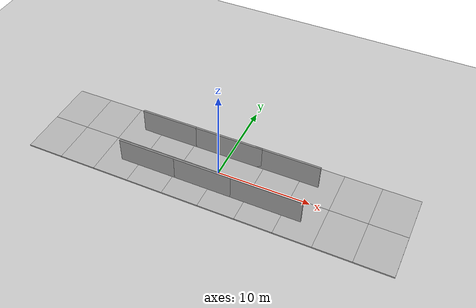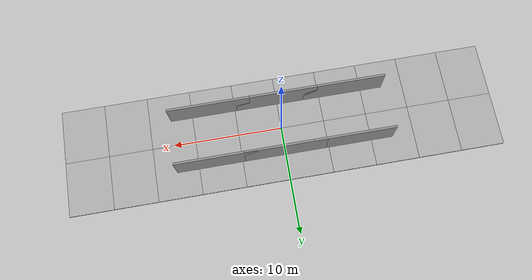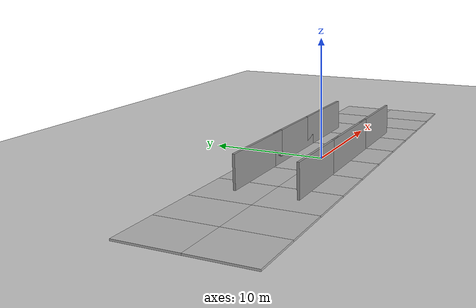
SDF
<sdf version="1.6">
 <world name="default">
  <light name="sun" type="directional">
   <pose>0 0 10 0 -0 0</pose>
   <diffuse>0.8 0.8 0.8 1</diffuse>
   <specular>0.1 0.1 0.1 1</specular>
   <attenuation>
    <range>1000</range>
    <constant>0.9</constant>
    <linear>0.01</linear>
    <quadratic>0.001</quadratic>
   </attenuation>
   <direction>-0.5 0.5 -1</direction>
  </light>
  <model name="ground_plane">
   <static>1</static>
   <link name="link">
    <collision name="collision">
     <geometry><plane><normal>0 0 1</normal><size>100 100</size></plane></geometry>
     <surface><friction><ode><mu>100</mu><mu2>50</mu2></ode></friction></surface>
    </collision>
    <visual name="visual">
     <cast_shadows>0</cast_shadows>
     <geometry><plane><normal>0 0 1</normal><size>100 100</size></plane></geometry>
     <material>
      <script><uri>file://media/materials/scripts/gazebo.material</uri><name>Gazebo/Grey</name></script>
     </material>
    </visual>
   </link>
  </model>
  <gravity>0 0 -9.8</gravity>
  <magnetic_field>6e-06 2.3e-05 -4.2e-05</magnetic_field>
  <atmosphere type="adiabatic"/>
  <physics name="default_physics" default="0" type="ode">
   <max_step_size>0.001</max_step_size>
   <real_time_factor>1</real_time_factor>
   <real_time_update_rate>1000</real_time_update_rate>
  </physics>
  <scene><ambient>0.4 0.4 0.4 1</ambient><background>0.7 0.7 0.7 1</background><shadows>1</shadows></scene>
  <spherical_coordinates>
   <surface_model>EARTH_WGS84</surface_model>
   <latitude_deg>0</latitude_deg>
   <longitude_deg>0</longitude_deg>
   <elevation>0</elevation>
   <heading_deg>0</heading_deg>
  </spherical_coordinates>
  <model name="grey_wall">
   <static>1</static>
   <link name="link">
    <pose>0 0 1.4 0 -0 0</pose>
    <collision name="collision"><geometry><box><size>7.5 0.2 2.8</size></box></geometry></collision>
    <visual name="visual">
     <cast_shadows>0</cast_shadows>
     <geometry><box><size>7.5 0.2 2.8</size></box></geometry>
     <material>
      <script>
       <uri>model://grey_wall/materials/scripts</uri>
       <uri>model://grey_wall/materials/textures</uri>
       <name>vrc/grey_wall</name>
      </script>
     </material>
    </visual>
   </link>
   <pose>-6.25 2.5 0 0 -0 0</pose>
  </model>
  <model name="grey_wall_clone">
   <static>1</static>
   <link name="link">
    <pose>0 0 1.4 0 -0 0</pose>
    <collision name="collision"><geometry><box><size>7.5 0.2 2.8</size></box></geometry></collision>
    <visual name="visual">
     <cast_shadows>0</cast_shadows>
     <geometry><box><size>7.5 0.2 2.8</size></box></geometry>
     <material>
      <script>
       <uri>model://grey_wall/materials/scripts</uri>
       <uri>model://grey_wall/materials/textures</uri>
       <name>vrc/grey_wall</name>
      </script>
     </material>
    </visual>
   </link>
   <pose>0 2.5 0 0 -0 0</pose>
  </model>
  <model name="grey_wall_clone_0">
   <static>1</static>
   <link name="link">
    <pose>0 0 1.4 0 -0 0</pose>
    <collision name="collision"><geometry><box><size>7.5 0.2 2.8</size></box></geometry></collision>
    <visual name="visual">
     <cast_shadows>0</cast_shadows>
     <geometry><box><size>7.5 0.2 2.8</size></box></geometry>
     <material>
      <script>
       <uri>model://grey_wall/materials/scripts</uri>
       <uri>model://grey_wall/materials/textures</uri>
       <name>vrc/grey_wall</name>
      </script>
     </material>
    </visual>
   </link>
   <pose>-6.25 -2.5 0 0 -0 0</pose>
  </model>
  <model name="grey_wall_clone_1">
   <static>1</static>
   <link name="link">
    <pose>0 0 1.4 0 -0 0</pose>
    <collision name="collision"><geometry><box><size>7.5 0.2 2.8</size></box></geometry></collision>
    <visual name="visual">
     <cast_shadows>0</cast_shadows>
     <geometry><box><size>7.5 0.2 2.8</size></box></geometry>
     <material>
      <script>
       <uri>model://grey_wall/materials/scripts</uri>
       <uri>model://grey_wall/materials/textures</uri>
       <name>vrc/grey_wall</name>
      </script>
     </material>
    </visual>
   </link>
   <pose>6.25 2.5 0 0 -0 0</pose>
  </model>
  <model name="grey_wall_clone_2">
   <static>1</static>
   <link name="link">
    <pose>0 0 1.4 0 -0 0</pose>
    <collision name="collision"><geometry><box><size>7.5 0.2 2.8</size></box></geometry></collision>
    <visual name="visual">
     <cast_shadows>0</cast_shadows>
     <geometry><box><size>7.5 0.2 2.8</size></box></geometry>
     <material>
      <script>
       <uri>model://grey_wall/materials/scripts</uri>
       <uri>model://grey_wall/materials/textures</uri>
       <name>vrc/grey_wall</name>
      </script>
     </material>
    </visual>
   </link>
   <pose>0 -2.5 0 0 -0 0</pose>
  </model>
  <model name="grey_wall_clone_3">
   <static>1</static>
   <link name="link">
    <pose>0 0 1.4 0 -0 0</pose>
    <collision name="collision"><geometry><box><size>7.5 0.2 2.8</size></box></geometry></collision>
    <visual name="visual">
     <cast_shadows>0</cast_shadows>
     <geometry><box><size>7.5 0.2 2.8</size></box></geometry>
     <material>
      <script>
       <uri>model://grey_wall/materials/scripts</uri>
       <uri>model://grey_wall/materials/textures</uri>
       <name>vrc/grey_wall</name>
      </script>
     </material>
    </visual>
   </link>
   <pose>6.25 -2.5 0 0 -0 0</pose>
  </model>
  <model name="mud_box">
   <static>1</static>
   <link name="link">
    <collision name="collision"><geometry><box><size>8 10 0.2</size></box></geometry></collision>
    <visual name="visual_1">
     <pose>-2 2.5 0 0 -0 0</pose>
     <cast_shadows>0</cast_shadows>
     <geometry><box><size>4 5 0.2</size></box></geometry>
     <material>
      <script>
       <uri>model://mud_box/materials/scripts</uri>
       <uri>model://mud_box/materials/textures</uri>
       <name>vrc/mud</name>
      </script>
     </material>
    </visual>
    <visual name="visual_2">
     <pose>2 2.5 0 0 -0 0</pose>
     <cast_shadows>0</cast_shadows>
     <geometry><box><size>4 5 0.2</size></box></geometry>
     <material>
      <script>
       <uri>model://mud_box/materials/scripts</uri>
       <uri>model://mud_box/materials/textures</uri>
       <name>vrc/mud</name>
      </script>
     </material>
    </visual>
    <visual name="visual_3">
     <pose>2 -2.5 0 0 -0 0</pose>
     <cast_shadows>0</cast_shadows>
     <geometry><box><size>4 5 0.2</size></box></geometry>
     <material>
      <script>
       <uri>model://mud_box/materials/scripts</uri>
       <uri>model://mud_box/materials/textures</uri>
       <name>vrc/mud</name>
      </script>
     </material>
    </visual>
    <visual name="visual_4">
     <pose>-2 -2.5 0 0 -0 0</pose>
     <cast_shadows>0</cast_shadows>
     <geometry><box><size>4 5 0.2</size></box></geometry>
     <material>
      <script>
       <uri>model://mud_box/materials/scripts</uri>
       <uri>model://mud_box/materials/textures</uri>
       <name>vrc/mud</name>
      </script>
     </material>
    </visual>
   </link>
  </model>
  <model name="mud_box_clone">
   <static>1</static>
   <link name="link">
    <collision name="collision"><geometry><box><size>8 10 0.2</size></box></geometry></collision>
    <visual name="visual_1">
     <pose>-2 2.5 0 0 -0 0</pose>
     <cast_shadows>0</cast_shadows>
     <geometry><box><size>4 5 0.2</size></box></geometry>
     <material>
      <script>
       <uri>model://mud_box/materials/scripts</uri>
       <uri>model://mud_box/materials/textures</uri>
       <name>vrc/mud</name>
      </script>
     </material>
    </visual>
    <visual name="visual_2">
     <pose>2 2.5 0 0 -0 0</pose>
     <cast_shadows>0</cast_shadows>
     <geometry><box><size>4 5 0.2</size></box></geometry>
     <material>
      <script>
       <uri>model://mud_box/materials/scripts</uri>
       <uri>model://mud_box/materials/textures</uri>
       <name>vrc/mud</name>
      </script>
     </material>
    </visual>
    <visual name="visual_3">
     <pose>2 -2.5 0 0 -0 0</pose>
     <cast_shadows>0</cast_shadows>
     <geometry><box><size>4 5 0.2</size></box></geometry>
     <material>
      <script>
       <uri>model://mud_box/materials/scripts</uri>
       <uri>model://mud_box/materials/textures</uri>
       <name>vrc/mud</name>
      </script>
     </material>
    </visual>
    <visual name="visual_4">
     <pose>-2 -2.5 0 0 -0 0</pose>
     <cast_shadows>0</cast_shadows>
     <geometry><box><size>4 5 0.2</size></box></geometry>
     <material>
      <script>
       <uri>model://mud_box/materials/scripts</uri>
       <uri>model://mud_box/materials/textures</uri>
       <name>vrc/mud</name>
      </script>
     </material>
    </visual>
   </link>
   <pose>-8 0.000222 0 0 -0 0</pose>
  </model>
  <model name="mud_box_clone_0">
   <static>1</static>
   <link name="link">
    <collision name="collision"><geometry><box><size>8 10 0.2</size></box></geometry></collision>
    <visual name="visual_1">
     <pose>-2 2.5 0 0 -0 0</pose>
     <cast_shadows>0</cast_shadows>
     <geometry><box><size>4 5 0.2</size></box></geometry>
     <material>
      <script>
       <uri>model://mud_box/materials/scripts</uri>
       <uri>model://mud_box/materials/textures</uri>
       <name>vrc/mud</name>
      </script>
     </material>
    </visual>
    <visual name="visual_2">
     <pose>2 2.5 0 0 -0 0</pose>
     <cast_shadows>0</cast_shadows>
     <geometry><box><size>4 5 0.2</size></box></geometry>
     <material>
      <script>
       <uri>model://mud_box/materials/scripts</uri>
       <uri>model://mud_box/materials/textures</uri>
       <name>vrc/mud</name>
      </script>
     </material>
    </visual>
    <visual name="visual_3">
     <pose>2 -2.5 0 0 -0 0</pose>
     <cast_shadows>0</cast_shadows>
     <geometry><box><size>4 5 0.2</size></box></geometry>
     <material>
      <script>
       <uri>model://mud_box/materials/scripts</uri>
       <uri>model://mud_box/materials/textures</uri>
       <name>vrc/mud</name>
      </script>
     </material>
    </visual>
    <visual name="visual_4">
     <pose>-2 -2.5 0 0 -0 0</pose>
     <cast_shadows>0</cast_shadows>
     <geometry><box><size>4 5 0.2</size></box></geometry>
     <material>
      <script>
       <uri>model://mud_box/materials/scripts</uri>
       <uri>model://mud_box/materials/textures</uri>
       <name>vrc/mud</name>
      </script>
     </material>
    </visual>
   </link>
   <pose>8 0 0 0 -0 0</pose>
  </model>
  <model name="mud_box_clone_1">
   <static>1</static>
   <link name="link">
    <collision name="collision"><geometry><box><size>8 10 0.2</size></box></geometry></collision>
    <visual name="visual_1">
     <pose>-2 2.5 0 0 -0 0</pose>
     <cast_shadows>0</cast_shadows>
     <geometry><box><size>4 5 0.2</size></box></geometry>
     <material>
      <script>
       <uri>model://mud_box/materials/scripts</uri>
       <uri>model://mud_box/materials/textures</uri>
       <name>vrc/mud</name>
      </script>
     </material>
    </visual>
    <visual name="visual_2">
     <pose>2 2.5 0 0 -0 0</pose>
     <cast_shadows>0</cast_shadows>
     <geometry><box><size>4 5 0.2</size></box></geometry>
     <material>
      <script>
       <uri>model://mud_box/materials/scripts</uri>
       <uri>model://mud_box/materials/textures</uri>
       <name>vrc/mud</name>
      </script>
     </material>
    </visual>
    <visual name="visual_3">
     <pose>2 -2.5 0 0 -0 0</pose>
     <cast_shadows>0</cast_shadows>
     <geometry><box><size>4 5 0.2</size></box></geometry>
     <material>
      <script>
       <uri>model://mud_box/materials/scripts</uri>
       <uri>model://mud_box/materials/textures</uri>
       <name>vrc/mud</name>
      </script>
     </material>
    </visual>
    <visual name="visual_4">
     <pose>-2 -2.5 0 0 -0 0</pose>
     <cast_shadows>0</cast_shadows>
     <geometry><box><size>4 5 0.2</size></box></geometry>
     <material>
      <script>
       <uri>model://mud_box/materials/scripts</uri>
       <uri>model://mud_box/materials/textures</uri>
       <name>vrc/mud</name>
      </script>
     </material>
    </visual>
   </link>
   <pose>-16 0 0 0 -0 0</pose>
  </model>
  <model name="mud_box_clone_2">
   <static>1</static>
   <link name="link">
    <collision name="collision"><geometry><box><size>8 10 0.2</size></box></geometry></collision>
    <visual name="visual_1">
     <pose>-2 2.5 0 0 -0 0</pose>
     <cast_shadows>0</cast_shadows>
     <geometry><box><size>4 5 0.2</size></box></geometry>
     <material>
      <script>
       <uri>model://mud_box/materials/scripts</uri>
       <uri>model://mud_box/materials/textures</uri>
       <name>vrc/mud</name>
      </script>
     </material>
    </visual>
    <visual name="visual_2">
     <pose>2 2.5 0 0 -0 0</pose>
     <cast_shadows>0</cast_shadows>
     <geometry><box><size>4 5 0.2</size></box></geometry>
     <material>
      <script>
       <uri>model://mud_box/materials/scripts</uri>
       <uri>model://mud_box/materials/textures</uri>
       <name>vrc/mud</name>
      </script>
     </material>
    </visual>
    <visual name="visual_3">
     <pose>2 -2.5 0 0 -0 0</pose>
     <cast_shadows>0</cast_shadows>
     <geometry><box><size>4 5 0.2</size></box></geometry>
     <material>
      <script>
       <uri>model://mud_box/materials/scripts</uri>
       <uri>model://mud_box/materials/textures</uri>
       <name>vrc/mud</name>
      </script>
     </material>
    </visual>
    <visual name="visual_4">
     <pose>-2 -2.5 0 0 -0 0</pose>
     <cast_shadows>0</cast_shadows>
     <geometry><box><size>4 5 0.2</size></box></geometry>
     <material>
      <script>
       <uri>model://mud_box/materials/scripts</uri>
       <uri>model://mud_box/materials/textures</uri>
       <name>vrc/mud</name>
      </script>
     </material>
    </visual>
   </link>
   <pose>16 0 0 0 -0 0</pose>
  </model>
 </world>
</sdf>
